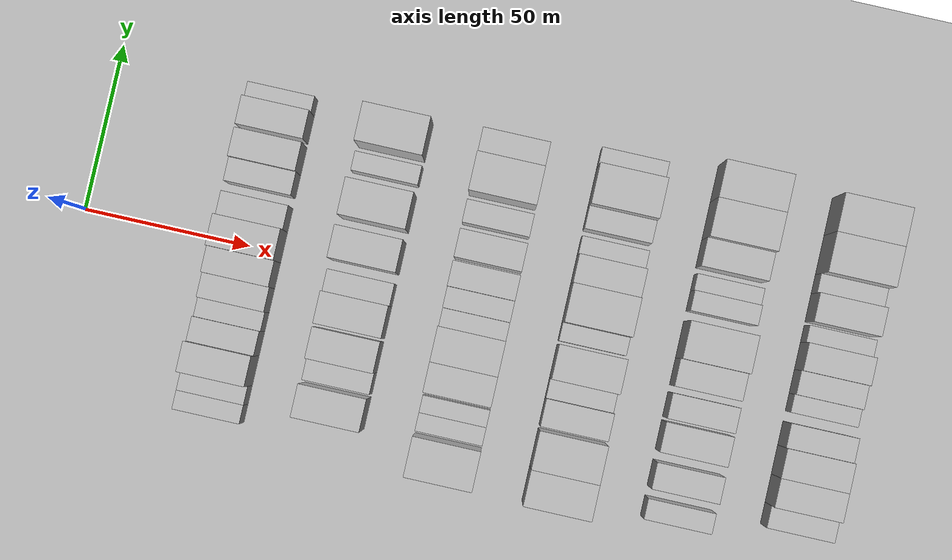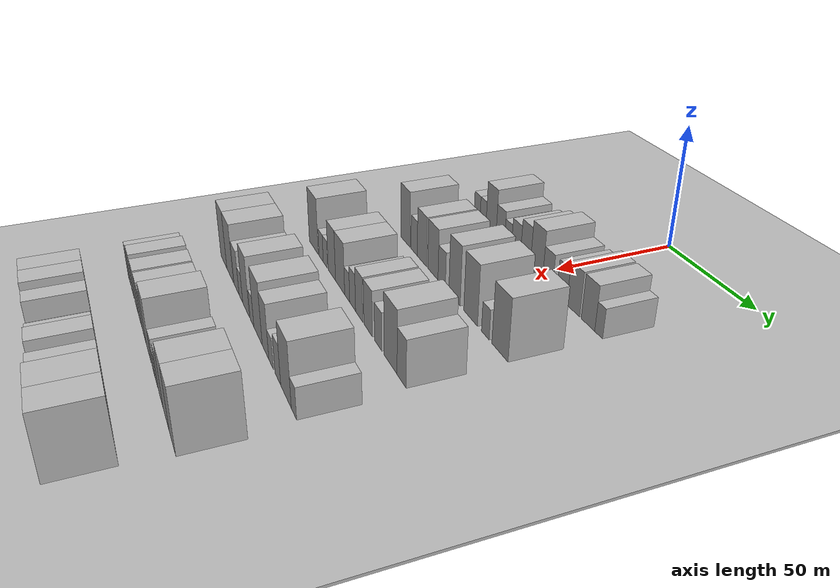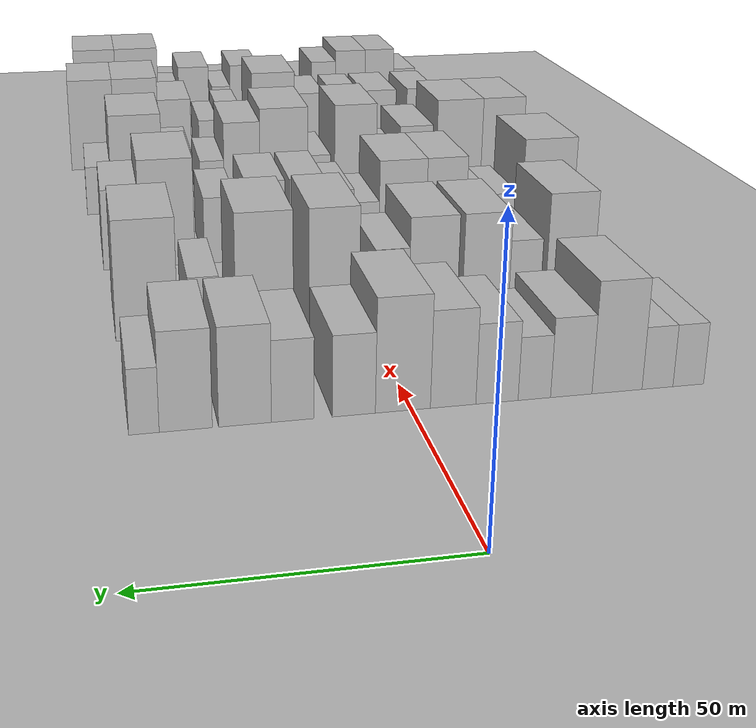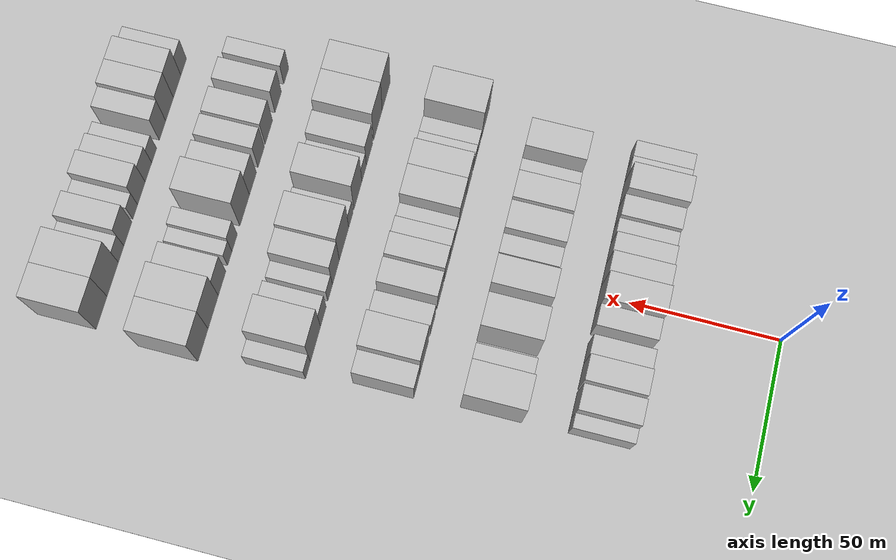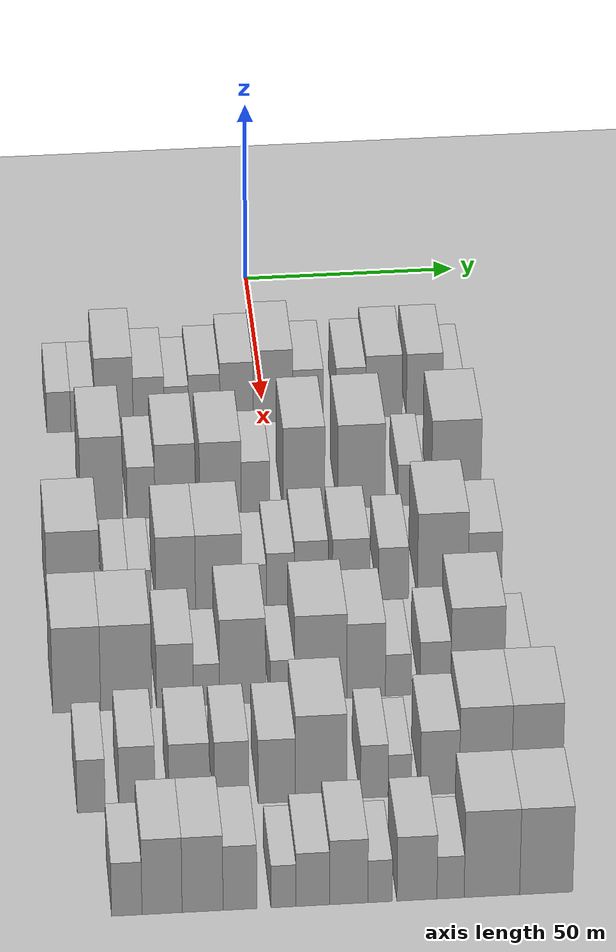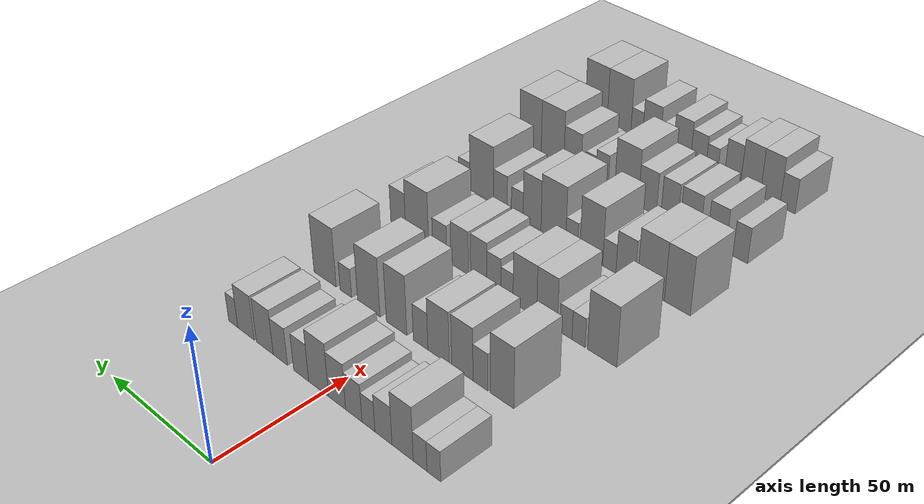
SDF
<sdf version="1.6">
 <world name="default">
  <include><name>ground_plane_1</name><uri>model://HANNAS_ground_plane</uri></include>
  <include>
   <name>ground_plane_2</name>
   <uri>model://HANNAS_ground_plane</uri>
   <pose>100 0 0  0 0 0</pose>
  </include>
  <model name="building_54">
   <static>1</static>
   <pose>50.0000 -48.3258 0 0.000000 0.000000 0.000000</pose>
   <link name="link">
    <pose>0 0 6.00 0 0 0</pose>
    <collision name="collision"><geometry><box><size>20.0000 5.6026 12.0000</size></box></geometry></collision>
    <visual name="visual">
     <cast_shadows>0</cast_shadows>
     <geometry><box><size>20.0000 5.6026 12.0000</size></box></geometry>
     <material>
      <script>
       <uri>model://HANNAS_wall/materials/scripts</uri>
       <uri>model://HANNAS_wall/materials/textures</uri>
       <name>vrc/HANNAS_wall</name>
      </script>
     </material>
    </visual>
   </link>
  </model>
  <model name="building_55">
   <static>1</static>
   <pose>50.0000 -42.7246 0 0.000000 0.000000 0.000000</pose>
   <link name="link">
    <pose>0 0 6.00 0 0 0</pose>
    <collision name="collision"><geometry><box><size>20.0000 5.5998 12.0000</size></box></geometry></collision>
    <visual name="visual">
     <cast_shadows>0</cast_shadows>
     <geometry><box><size>20.0000 5.5998 12.0000</size></box></geometry>
     <material>
      <script>
       <uri>model://HANNAS_wall/materials/scripts</uri>
       <uri>model://HANNAS_wall/materials/textures</uri>
       <name>vrc/HANNAS_wall</name>
      </script>
     </material>
    </visual>
   </link>
  </model>
  <model name="building_56">
   <static>1</static>
   <pose>50.0000 -35.4338 0 0.000000 0.000000 0.000000</pose>
   <link name="link">
    <pose>0 0 10.50 0 0 0</pose>
    <collision name="collision"><geometry><box><size>20.0000 8.9818 21.0000</size></box></geometry></collision>
    <visual name="visual">
     <cast_shadows>0</cast_shadows>
     <geometry><box><size>20.0000 8.9818 21.0000</size></box></geometry>
     <material>
      <script>
       <uri>model://HANNAS_wall/materials/scripts</uri>
       <uri>model://HANNAS_wall/materials/textures</uri>
       <name>vrc/HANNAS_wall</name>
      </script>
     </material>
    </visual>
   </link>
  </model>
  <model name="building_57">
   <static>1</static>
   <pose>50.0000 -27.2851 0 0.000000 0.000000 0.000000</pose>
   <link name="link">
    <pose>0 0 7.50 0 0 0</pose>
    <collision name="collision"><geometry><box><size>20.0000 7.3157 15.0000</size></box></geometry></collision>
    <visual name="visual">
     <cast_shadows>0</cast_shadows>
     <geometry><box><size>20.0000 7.3157 15.0000</size></box></geometry>
     <material>
      <script>
       <uri>model://HANNAS_wall/materials/scripts</uri>
       <uri>model://HANNAS_wall/materials/textures</uri>
       <name>vrc/HANNAS_wall</name>
      </script>
     </material>
    </visual>
   </link>
  </model>
  <model name="building_58">
   <static>1</static>
   <pose>50.0000 -20.7838 0 0.000000 0.000000 0.000000</pose>
   <link name="link">
    <pose>0 0 6.00 0 0 0</pose>
    <collision name="collision"><geometry><box><size>20.0000 5.6870 12.0000</size></box></geometry></collision>
    <visual name="visual">
     <cast_shadows>0</cast_shadows>
     <geometry><box><size>20.0000 5.6870 12.0000</size></box></geometry>
     <material>
      <script>
       <uri>model://HANNAS_wall/materials/scripts</uri>
       <uri>model://HANNAS_wall/materials/textures</uri>
       <name>vrc/HANNAS_wall</name>
      </script>
     </material>
    </visual>
   </link>
  </model>
  <model name="building_59">
   <static>1</static>
   <pose>50.0000 -14.2784 0 0.000000 0.000000 0.000000</pose>
   <link name="link">
    <pose>0 0 7.50 0 0 0</pose>
    <collision name="collision"><geometry><box><size>20.0000 7.3239 15.0000</size></box></geometry></collision>
    <visual name="visual">
     <cast_shadows>0</cast_shadows>
     <geometry><box><size>20.0000 7.3239 15.0000</size></box></geometry>
     <material>
      <script>
       <uri>model://HANNAS_wall/materials/scripts</uri>
       <uri>model://HANNAS_wall/materials/textures</uri>
       <name>vrc/HANNAS_wall</name>
      </script>
     </material>
    </visual>
   </link>
  </model>
  <model name="building_60">
   <static>1</static>
   <pose>50.0000 -6.7262 0 0.000000 0.000000 0.000000</pose>
   <link name="link">
    <pose>0 0 9.00 0 0 0</pose>
    <collision name="collision"><geometry><box><size>20.0000 7.7805 18.0000</size></box></geometry></collision>
    <visual name="visual">
     <cast_shadows>0</cast_shadows>
     <geometry><box><size>20.0000 7.7805 18.0000</size></box></geometry>
     <material>
      <script>
       <uri>model://HANNAS_wall/materials/scripts</uri>
       <uri>model://HANNAS_wall/materials/textures</uri>
       <name>vrc/HANNAS_wall</name>
      </script>
     </material>
    </visual>
   </link>
  </model>
  <model name="building_61">
   <static>1</static>
   <pose>50.0000 1.8113 0 0.000000 0.000000 0.000000</pose>
   <link name="link">
    <pose>0 0 10.50 0 0 0</pose>
    <collision name="collision"><geometry><box><size>20.0000 9.2945 21.0000</size></box></geometry></collision>
    <visual name="visual">
     <cast_shadows>0</cast_shadows>
     <geometry><box><size>20.0000 9.2945 21.0000</size></box></geometry>
     <material>
      <script>
       <uri>model://HANNAS_wall/materials/scripts</uri>
       <uri>model://HANNAS_wall/materials/textures</uri>
       <name>vrc/HANNAS_wall</name>
      </script>
     </material>
    </visual>
   </link>
  </model>
  <model name="building_62">
   <static>1</static>
   <pose>50.0000 10.0575 0 0.000000 0.000000 0.000000</pose>
   <link name="link">
    <pose>0 0 7.50 0 0 0</pose>
    <collision name="collision"><geometry><box><size>20.0000 7.1979 15.0000</size></box></geometry></collision>
    <visual name="visual">
     <cast_shadows>0</cast_shadows>
     <geometry><box><size>20.0000 7.1979 15.0000</size></box></geometry>
     <material>
      <script>
       <uri>model://HANNAS_wall/materials/scripts</uri>
       <uri>model://HANNAS_wall/materials/textures</uri>
       <name>vrc/HANNAS_wall</name>
      </script>
     </material>
    </visual>
   </link>
  </model>
  <model name="building_63">
   <static>1</static>
   <pose>50.0000 20.1612 0 0.000000 0.000000 0.000000</pose>
   <link name="link">
    <pose>0 0 7.50 0 0 0</pose>
    <collision name="collision"><geometry><box><size>20.0000 7.0094 15.0000</size></box></geometry></collision>
    <visual name="visual">
     <cast_shadows>0</cast_shadows>
     <geometry><box><size>20.0000 7.0094 15.0000</size></box></geometry>
     <material>
      <script>
       <uri>model://HANNAS_wall/materials/scripts</uri>
       <uri>model://HANNAS_wall/materials/textures</uri>
       <name>vrc/HANNAS_wall</name>
      </script>
     </material>
    </visual>
   </link>
  </model>
  <model name="building_64">
   <static>1</static>
   <pose>50.0000 27.9364 0 0.000000 0.000000 0.000000</pose>
   <link name="link">
    <pose>0 0 9.00 0 0 0</pose>
    <collision name="collision"><geometry><box><size>20.0000 8.5410 18.0000</size></box></geometry></collision>
    <visual name="visual">
     <cast_shadows>0</cast_shadows>
     <geometry><box><size>20.0000 8.5410 18.0000</size></box></geometry>
     <material>
      <script>
       <uri>model://HANNAS_wall/materials/scripts</uri>
       <uri>model://HANNAS_wall/materials/textures</uri>
       <name>vrc/HANNAS_wall</name>
      </script>
     </material>
    </visual>
   </link>
  </model>
  <model name="building_65">
   <static>1</static>
   <pose>50.0000 37.4472 0 0.000000 0.000000 0.000000</pose>
   <link name="link">
    <pose>0 0 9.00 0 0 0</pose>
    <collision name="collision"><geometry><box><size>20.0000 8.4807 18.0000</size></box></geometry></collision>
    <visual name="visual">
     <cast_shadows>0</cast_shadows>
     <geometry><box><size>20.0000 8.4807 18.0000</size></box></geometry>
     <material>
      <script>
       <uri>model://HANNAS_wall/materials/scripts</uri>
       <uri>model://HANNAS_wall/materials/textures</uri>
       <name>vrc/HANNAS_wall</name>
      </script>
     </material>
    </visual>
   </link>
  </model>
  <model name="building_66">
   <static>1</static>
   <pose>50.0000 44.1012 0 0.000000 0.000000 0.000000</pose>
   <link name="link">
    <pose>0 0 6.00 0 0 0</pose>
    <collision name="collision"><geometry><box><size>20.0000 4.8273 12.0000</size></box></geometry></collision>
    <visual name="visual">
     <cast_shadows>0</cast_shadows>
     <geometry><box><size>20.0000 4.8273 12.0000</size></box></geometry>
     <material>
      <script>
       <uri>model://HANNAS_wall/materials/scripts</uri>
       <uri>model://HANNAS_wall/materials/textures</uri>
       <name>vrc/HANNAS_wall</name>
      </script>
     </material>
    </visual>
   </link>
  </model>
  <model name="building_189">
   <static>1</static>
   <pose>85.0000 -40.3167 0 0.000000 0.000000 0.000000</pose>
   <link name="link">
    <pose>0 0 12.00 0 0 0</pose>
    <collision name="collision"><geometry><box><size>20.0000 9.7287 24.0000</size></box></geometry></collision>
    <visual name="visual">
     <cast_shadows>0</cast_shadows>
     <geometry><box><size>20.0000 9.7287 24.0000</size></box></geometry>
     <material>
      <script>
       <uri>model://HANNAS_wall/materials/scripts</uri>
       <uri>model://HANNAS_wall/materials/textures</uri>
       <name>vrc/HANNAS_wall</name>
      </script>
     </material>
    </visual>
   </link>
  </model>
  <model name="building_190">
   <static>1</static>
   <pose>85.0000 -31.2746 0 0.000000 0.000000 0.000000</pose>
   <link name="link">
    <pose>0 0 7.50 0 0 0</pose>
    <collision name="collision"><geometry><box><size>20.0000 6.3557 15.0000</size></box></geometry></collision>
    <visual name="visual">
     <cast_shadows>0</cast_shadows>
     <geometry><box><size>20.0000 6.3557 15.0000</size></box></geometry>
     <material>
      <script>
       <uri>model://HANNAS_wall/materials/scripts</uri>
       <uri>model://HANNAS_wall/materials/textures</uri>
       <name>vrc/HANNAS_wall</name>
      </script>
     </material>
    </visual>
   </link>
  </model>
  <model name="building_191">
   <static>1</static>
   <pose>85.0000 -23.4525 0 0.000000 0.000000 0.000000</pose>
   <link name="link">
    <pose>0 0 10.50 0 0 0</pose>
    <collision name="collision"><geometry><box><size>20.0000 9.2884 21.0000</size></box></geometry></collision>
    <visual name="visual">
     <cast_shadows>0</cast_shadows>
     <geometry><box><size>20.0000 9.2884 21.0000</size></box></geometry>
     <material>
      <script>
       <uri>model://HANNAS_wall/materials/scripts</uri>
       <uri>model://HANNAS_wall/materials/textures</uri>
       <name>vrc/HANNAS_wall</name>
      </script>
     </material>
    </visual>
   </link>
  </model>
  <model name="building_192">
   <static>1</static>
   <pose>85.0000 -13.0356 0 0.000000 0.000000 0.000000</pose>
   <link name="link">
    <pose>0 0 10.50 0 0 0</pose>
    <collision name="collision"><geometry><box><size>20.0000 9.5454 21.0000</size></box></geometry></collision>
    <visual name="visual">
     <cast_shadows>0</cast_shadows>
     <geometry><box><size>20.0000 9.5454 21.0000</size></box></geometry>
     <material>
      <script>
       <uri>model://HANNAS_wall/materials/scripts</uri>
       <uri>model://HANNAS_wall/materials/textures</uri>
       <name>vrc/HANNAS_wall</name>
      </script>
     </material>
    </visual>
   </link>
  </model>
  <model name="building_193">
   <static>1</static>
   <pose>85.0000 -4.9481 0 0.000000 0.000000 0.000000</pose>
   <link name="link">
    <pose>0 0 7.50 0 0 0</pose>
    <collision name="collision"><geometry><box><size>20.0000 6.6296 15.0000</size></box></geometry></collision>
    <visual name="visual">
     <cast_shadows>0</cast_shadows>
     <geometry><box><size>20.0000 6.6296 15.0000</size></box></geometry>
     <material>
      <script>
       <uri>model://HANNAS_wall/materials/scripts</uri>
       <uri>model://HANNAS_wall/materials/textures</uri>
       <name>vrc/HANNAS_wall</name>
      </script>
     </material>
    </visual>
   </link>
  </model>
  <model name="building_194">
   <static>1</static>
   <pose>85.0000 6.1848 0 0.000000 0.000000 0.000000</pose>
   <link name="link">
    <pose>0 0 12.00 0 0 0</pose>
    <collision name="collision"><geometry><box><size>20.0000 9.6360 24.0000</size></box></geometry></collision>
    <visual name="visual">
     <cast_shadows>0</cast_shadows>
     <geometry><box><size>20.0000 9.6360 24.0000</size></box></geometry>
     <material>
      <script>
       <uri>model://HANNAS_wall/materials/scripts</uri>
       <uri>model://HANNAS_wall/materials/textures</uri>
       <name>vrc/HANNAS_wall</name>
      </script>
     </material>
    </visual>
   </link>
  </model>
  <model name="building_195">
   <static>1</static>
   <pose>85.0000 19.4495 0 0.000000 0.000000 0.000000</pose>
   <link name="link">
    <pose>0 0 12.00 0 0 0</pose>
    <collision name="collision"><geometry><box><size>20.0000 10.8935 24.0000</size></box></geometry></collision>
    <visual name="visual">
     <cast_shadows>0</cast_shadows>
     <geometry><box><size>20.0000 10.8935 24.0000</size></box></geometry>
     <material>
      <script>
       <uri>model://HANNAS_wall/materials/scripts</uri>
       <uri>model://HANNAS_wall/materials/textures</uri>
       <name>vrc/HANNAS_wall</name>
      </script>
     </material>
    </visual>
   </link>
  </model>
  <model name="building_196">
   <static>1</static>
   <pose>85.0000 30.7673 0 0.000000 0.000000 0.000000</pose>
   <link name="link">
    <pose>0 0 6.00 0 0 0</pose>
    <collision name="collision"><geometry><box><size>20.0000 5.7422 12.0000</size></box></geometry></collision>
    <visual name="visual">
     <cast_shadows>0</cast_shadows>
     <geometry><box><size>20.0000 5.7422 12.0000</size></box></geometry>
     <material>
      <script>
       <uri>model://HANNAS_wall/materials/scripts</uri>
       <uri>model://HANNAS_wall/materials/textures</uri>
       <name>vrc/HANNAS_wall</name>
      </script>
     </material>
    </visual>
   </link>
  </model>
  <model name="building_197">
   <static>1</static>
   <pose>85.0000 41.3418 0 0.000000 0.000000 0.000000</pose>
   <link name="link">
    <pose>0 0 12.00 0 0 0</pose>
    <collision name="collision"><geometry><box><size>20.0000 11.4066 24.0000</size></box></geometry></collision>
    <visual name="visual">
     <cast_shadows>0</cast_shadows>
     <geometry><box><size>20.0000 11.4066 24.0000</size></box></geometry>
     <material>
      <script>
       <uri>model://HANNAS_wall/materials/scripts</uri>
       <uri>model://HANNAS_wall/materials/textures</uri>
       <name>vrc/HANNAS_wall</name>
      </script>
     </material>
    </visual>
   </link>
  </model>
  <model name="building_315">
   <static>1</static>
   <pose>120.0000 -48.7203 0 0.000000 0.000000 0.000000</pose>
   <link name="link">
    <pose>0 0 12.00 0 0 0</pose>
    <collision name="collision"><geometry><box><size>20.0000 11.8849 24.0000</size></box></geometry></collision>
    <visual name="visual">
     <cast_shadows>0</cast_shadows>
     <geometry><box><size>20.0000 11.8849 24.0000</size></box></geometry>
     <material>
      <script>
       <uri>model://HANNAS_wall/materials/scripts</uri>
       <uri>model://HANNAS_wall/materials/textures</uri>
       <name>vrc/HANNAS_wall</name>
      </script>
     </material>
    </visual>
   </link>
  </model>
  <model name="building_316">
   <static>1</static>
   <pose>120.0000 -39.0490 0 0.000000 0.000000 0.000000</pose>
   <link name="link">
    <pose>0 0 6.00 0 0 0</pose>
    <collision name="collision"><geometry><box><size>20.0000 5.4577 12.0000</size></box></geometry></collision>
    <visual name="visual">
     <cast_shadows>0</cast_shadows>
     <geometry><box><size>20.0000 5.4577 12.0000</size></box></geometry>
     <material>
      <script>
       <uri>model://HANNAS_wall/materials/scripts</uri>
       <uri>model://HANNAS_wall/materials/textures</uri>
       <name>vrc/HANNAS_wall</name>
      </script>
     </material>
    </visual>
   </link>
  </model>
  <model name="building_317">
   <static>1</static>
   <pose>120.0000 -33.7328 0 0.000000 0.000000 0.000000</pose>
   <link name="link">
    <pose>0 0 6.00 0 0 0</pose>
    <collision name="collision"><geometry><box><size>20.0000 5.1747 12.0000</size></box></geometry></collision>
    <visual name="visual">
     <cast_shadows>0</cast_shadows>
     <geometry><box><size>20.0000 5.1747 12.0000</size></box></geometry>
     <material>
      <script>
       <uri>model://HANNAS_wall/materials/scripts</uri>
       <uri>model://HANNAS_wall/materials/textures</uri>
       <name>vrc/HANNAS_wall</name>
      </script>
     </material>
    </visual>
   </link>
  </model>
  <model name="building_318">
   <static>1</static>
   <pose>120.0000 -25.6746 0 0.000000 0.000000 0.000000</pose>
   <link name="link">
    <pose>0 0 10.50 0 0 0</pose>
    <collision name="collision"><geometry><box><size>20.0000 8.9417 21.0000</size></box></geometry></collision>
    <visual name="visual">
     <cast_shadows>0</cast_shadows>
     <geometry><box><size>20.0000 8.9417 21.0000</size></box></geometry>
     <material>
      <script>
       <uri>model://HANNAS_wall/materials/scripts</uri>
       <uri>model://HANNAS_wall/materials/textures</uri>
       <name>vrc/HANNAS_wall</name>
      </script>
     </material>
    </visual>
   </link>
  </model>
  <model name="building_319">
   <static>1</static>
   <pose>120.0000 -15.9618 0 0.000000 0.000000 0.000000</pose>
   <link name="link">
    <pose>0 0 10.50 0 0 0</pose>
    <collision name="collision"><geometry><box><size>20.0000 10.4840 21.0000</size></box></geometry></collision>
    <visual name="visual">
     <cast_shadows>0</cast_shadows>
     <geometry><box><size>20.0000 10.4840 21.0000</size></box></geometry>
     <material>
      <script>
       <uri>model://HANNAS_wall/materials/scripts</uri>
       <uri>model://HANNAS_wall/materials/textures</uri>
       <name>vrc/HANNAS_wall</name>
      </script>
     </material>
    </visual>
   </link>
  </model>
  <model name="building_320">
   <static>1</static>
   <pose>120.0000 -7.9566 0 0.000000 0.000000 0.000000</pose>
   <link name="link">
    <pose>0 0 6.00 0 0 0</pose>
    <collision name="collision"><geometry><box><size>20.0000 5.5264 12.0000</size></box></geometry></collision>
    <visual name="visual">
     <cast_shadows>0</cast_shadows>
     <geometry><box><size>20.0000 5.5264 12.0000</size></box></geometry>
     <material>
      <script>
       <uri>model://HANNAS_wall/materials/scripts</uri>
       <uri>model://HANNAS_wall/materials/textures</uri>
       <name>vrc/HANNAS_wall</name>
      </script>
     </material>
    </visual>
   </link>
  </model>
  <model name="building_321">
   <static>1</static>
   <pose>120.0000 -2.0311 0 0.000000 0.000000 0.000000</pose>
   <link name="link">
    <pose>0 0 7.50 0 0 0</pose>
    <collision name="collision"><geometry><box><size>20.0000 6.3246 15.0000</size></box></geometry></collision>
    <visual name="visual">
     <cast_shadows>0</cast_shadows>
     <geometry><box><size>20.0000 6.3246 15.0000</size></box></geometry>
     <material>
      <script>
       <uri>model://HANNAS_wall/materials/scripts</uri>
       <uri>model://HANNAS_wall/materials/textures</uri>
       <name>vrc/HANNAS_wall</name>
      </script>
     </material>
    </visual>
   </link>
  </model>
  <model name="building_322">
   <static>1</static>
   <pose>120.0000 4.9315 0 0.000000 0.000000 0.000000</pose>
   <link name="link">
    <pose>0 0 9.00 0 0 0</pose>
    <collision name="collision"><geometry><box><size>20.0000 7.6006 18.0000</size></box></geometry></collision>
    <visual name="visual">
     <cast_shadows>0</cast_shadows>
     <geometry><box><size>20.0000 7.6006 18.0000</size></box></geometry>
     <material>
      <script>
       <uri>model://HANNAS_wall/materials/scripts</uri>
       <uri>model://HANNAS_wall/materials/textures</uri>
       <name>vrc/HANNAS_wall</name>
      </script>
     </material>
    </visual>
   </link>
  </model>
  <model name="building_323">
   <static>1</static>
   <pose>120.0000 13.9348 0 0.000000 0.000000 0.000000</pose>
   <link name="link">
    <pose>0 0 9.00 0 0 0</pose>
    <collision name="collision"><geometry><box><size>20.0000 8.4059 18.0000</size></box></geometry></collision>
    <visual name="visual">
     <cast_shadows>0</cast_shadows>
     <geometry><box><size>20.0000 8.4059 18.0000</size></box></geometry>
     <material>
      <script>
       <uri>model://HANNAS_wall/materials/scripts</uri>
       <uri>model://HANNAS_wall/materials/textures</uri>
       <name>vrc/HANNAS_wall</name>
      </script>
     </material>
    </visual>
   </link>
  </model>
  <model name="building_324">
   <static>1</static>
   <pose>120.0000 23.5637 0 0.000000 0.000000 0.000000</pose>
   <link name="link">
    <pose>0 0 7.50 0 0 0</pose>
    <collision name="collision"><geometry><box><size>20.0000 6.8520 15.0000</size></box></geometry></collision>
    <visual name="visual">
     <cast_shadows>0</cast_shadows>
     <geometry><box><size>20.0000 6.8520 15.0000</size></box></geometry>
     <material>
      <script>
       <uri>model://HANNAS_wall/materials/scripts</uri>
       <uri>model://HANNAS_wall/materials/textures</uri>
       <name>vrc/HANNAS_wall</name>
      </script>
     </material>
    </visual>
   </link>
  </model>
  <model name="building_325">
   <static>1</static>
   <pose>120.0000 34.7337 0 0.000000 0.000000 0.000000</pose>
   <link name="link">
    <pose>0 0 12.00 0 0 0</pose>
    <collision name="collision"><geometry><box><size>20.0000 11.4880 24.0000</size></box></geometry></collision>
    <visual name="visual">
     <cast_shadows>0</cast_shadows>
     <geometry><box><size>20.0000 11.4880 24.0000</size></box></geometry>
     <material>
      <script>
       <uri>model://HANNAS_wall/materials/scripts</uri>
       <uri>model://HANNAS_wall/materials/textures</uri>
       <name>vrc/HANNAS_wall</name>
      </script>
     </material>
    </visual>
   </link>
  </model>
  <model name="building_326">
   <static>1</static>
   <pose>120.0000 44.2799 0 0.000000 0.000000 0.000000</pose>
   <link name="link">
    <pose>0 0 9.00 0 0 0</pose>
    <collision name="collision"><geometry><box><size>20.0000 7.6044 18.0000</size></box></geometry></collision>
    <visual name="visual">
     <cast_shadows>0</cast_shadows>
     <geometry><box><size>20.0000 7.6044 18.0000</size></box></geometry>
     <material>
      <script>
       <uri>model://HANNAS_wall/materials/scripts</uri>
       <uri>model://HANNAS_wall/materials/textures</uri>
       <name>vrc/HANNAS_wall</name>
      </script>
     </material>
    </visual>
   </link>
  </model>
  <model name="building_440">
   <static>1</static>
   <pose>155.0000 -49.9198 0 0.000000 0.000000 0.000000</pose>
   <link name="link">
    <pose>0 0 12.00 0 0 0</pose>
    <collision name="collision"><geometry><box><size>20.0000 10.5899 24.0000</size></box></geometry></collision>
    <visual name="visual">
     <cast_shadows>0</cast_shadows>
     <geometry><box><size>20.0000 10.5899 24.0000</size></box></geometry>
     <material>
      <script>
       <uri>model://HANNAS_wall/materials/scripts</uri>
       <uri>model://HANNAS_wall/materials/textures</uri>
       <name>vrc/HANNAS_wall</name>
      </script>
     </material>
    </visual>
   </link>
  </model>
  <model name="building_441">
   <static>1</static>
   <pose>155.0000 -38.9523 0 0.000000 0.000000 0.000000</pose>
   <link name="link">
    <pose>0 0 12.00 0 0 0</pose>
    <collision name="collision"><geometry><box><size>20.0000 11.3451 24.0000</size></box></geometry></collision>
    <visual name="visual">
     <cast_shadows>0</cast_shadows>
     <geometry><box><size>20.0000 11.3451 24.0000</size></box></geometry>
     <material>
      <script>
       <uri>model://HANNAS_wall/materials/scripts</uri>
       <uri>model://HANNAS_wall/materials/textures</uri>
       <name>vrc/HANNAS_wall</name>
      </script>
     </material>
    </visual>
   </link>
  </model>
  <model name="building_442">
   <static>1</static>
   <pose>155.0000 -28.1879 0 0.000000 0.000000 0.000000</pose>
   <link name="link">
    <pose>0 0 9.00 0 0 0</pose>
    <collision name="collision"><geometry><box><size>20.0000 8.1836 18.0000</size></box></geometry></collision>
    <visual name="visual">
     <cast_shadows>0</cast_shadows>
     <geometry><box><size>20.0000 8.1836 18.0000</size></box></geometry>
     <material>
      <script>
       <uri>model://HANNAS_wall/materials/scripts</uri>
       <uri>model://HANNAS_wall/materials/textures</uri>
       <name>vrc/HANNAS_wall</name>
      </script>
     </material>
    </visual>
   </link>
  </model>
  <model name="building_443">
   <static>1</static>
   <pose>155.0000 -21.2065 0 0.000000 0.000000 0.000000</pose>
   <link name="link">
    <pose>0 0 6.00 0 0 0</pose>
    <collision name="collision"><geometry><box><size>20.0000 5.7793 12.0000</size></box></geometry></collision>
    <visual name="visual">
     <cast_shadows>0</cast_shadows>
     <geometry><box><size>20.0000 5.7793 12.0000</size></box></geometry>
     <material>
      <script>
       <uri>model://HANNAS_wall/materials/scripts</uri>
       <uri>model://HANNAS_wall/materials/textures</uri>
       <name>vrc/HANNAS_wall</name>
      </script>
     </material>
    </visual>
   </link>
  </model>
  <model name="building_444">
   <static>1</static>
   <pose>155.0000 -13.2090 0 0.000000 0.000000 0.000000</pose>
   <link name="link">
    <pose>0 0 12.00 0 0 0</pose>
    <collision name="collision"><geometry><box><size>20.0000 10.2158 24.0000</size></box></geometry></collision>
    <visual name="visual">
     <cast_shadows>0</cast_shadows>
     <geometry><box><size>20.0000 10.2158 24.0000</size></box></geometry>
     <material>
      <script>
       <uri>model://HANNAS_wall/materials/scripts</uri>
       <uri>model://HANNAS_wall/materials/textures</uri>
       <name>vrc/HANNAS_wall</name>
      </script>
     </material>
    </visual>
   </link>
  </model>
  <model name="building_445">
   <static>1</static>
   <pose>155.0000 -4.3691 0 0.000000 0.000000 0.000000</pose>
   <link name="link">
    <pose>0 0 6.00 0 0 0</pose>
    <collision name="collision"><geometry><box><size>20.0000 5.4639 12.0000</size></box></geometry></collision>
    <visual name="visual">
     <cast_shadows>0</cast_shadows>
     <geometry><box><size>20.0000 5.4639 12.0000</size></box></geometry>
     <material>
      <script>
       <uri>model://HANNAS_wall/materials/scripts</uri>
       <uri>model://HANNAS_wall/materials/textures</uri>
       <name>vrc/HANNAS_wall</name>
      </script>
     </material>
    </visual>
   </link>
  </model>
  <model name="building_446">
   <static>1</static>
   <pose>155.0000 4.1331 0 0.000000 0.000000 0.000000</pose>
   <link name="link">
    <pose>0 0 12.00 0 0 0</pose>
    <collision name="collision"><geometry><box><size>20.0000 11.5405 24.0000</size></box></geometry></collision>
    <visual name="visual">
     <cast_shadows>0</cast_shadows>
     <geometry><box><size>20.0000 11.5405 24.0000</size></box></geometry>
     <material>
      <script>
       <uri>model://HANNAS_wall/materials/scripts</uri>
       <uri>model://HANNAS_wall/materials/textures</uri>
       <name>vrc/HANNAS_wall</name>
      </script>
     </material>
    </visual>
   </link>
  </model>
  <model name="building_447">
   <static>1</static>
   <pose>155.0000 14.1866 0 0.000000 0.000000 0.000000</pose>
   <link name="link">
    <pose>0 0 10.50 0 0 0</pose>
    <collision name="collision"><geometry><box><size>20.0000 8.5666 21.0000</size></box></geometry></collision>
    <visual name="visual">
     <cast_shadows>0</cast_shadows>
     <geometry><box><size>20.0000 8.5666 21.0000</size></box></geometry>
     <material>
      <script>
       <uri>model://HANNAS_wall/materials/scripts</uri>
       <uri>model://HANNAS_wall/materials/textures</uri>
       <name>vrc/HANNAS_wall</name>
      </script>
     </material>
    </visual>
   </link>
  </model>
  <model name="building_448">
   <static>1</static>
   <pose>155.0000 21.3160 0 0.000000 0.000000 0.000000</pose>
   <link name="link">
    <pose>0 0 6.00 0 0 0</pose>
    <collision name="collision"><geometry><box><size>20.0000 5.6921 12.0000</size></box></geometry></collision>
    <visual name="visual">
     <cast_shadows>0</cast_shadows>
     <geometry><box><size>20.0000 5.6921 12.0000</size></box></geometry>
     <material>
      <script>
       <uri>model://HANNAS_wall/materials/scripts</uri>
       <uri>model://HANNAS_wall/materials/textures</uri>
       <name>vrc/HANNAS_wall</name>
      </script>
     </material>
    </visual>
   </link>
  </model>
  <model name="building_449">
   <static>1</static>
   <pose>155.0000 29.5695 0 0.000000 0.000000 0.000000</pose>
   <link name="link">
    <pose>0 0 7.50 0 0 0</pose>
    <collision name="collision"><geometry><box><size>20.0000 6.8151 15.0000</size></box></geometry></collision>
    <visual name="visual">
     <cast_shadows>0</cast_shadows>
     <geometry><box><size>20.0000 6.8151 15.0000</size></box></geometry>
     <material>
      <script>
       <uri>model://HANNAS_wall/materials/scripts</uri>
       <uri>model://HANNAS_wall/materials/textures</uri>
       <name>vrc/HANNAS_wall</name>
      </script>
     </material>
    </visual>
   </link>
  </model>
  <model name="building_450">
   <static>1</static>
   <pose>155.0000 38.9647 0 0.000000 0.000000 0.000000</pose>
   <link name="link">
    <pose>0 0 12.00 0 0 0</pose>
    <collision name="collision"><geometry><box><size>20.0000 11.9753 24.0000</size></box></geometry></collision>
    <visual name="visual">
     <cast_shadows>0</cast_shadows>
     <geometry><box><size>20.0000 11.9753 24.0000</size></box></geometry>
     <material>
      <script>
       <uri>model://HANNAS_wall/materials/scripts</uri>
       <uri>model://HANNAS_wall/materials/textures</uri>
       <name>vrc/HANNAS_wall</name>
      </script>
     </material>
    </visual>
   </link>
  </model>
  <model name="building_451">
   <static>1</static>
   <pose>155.0000 47.8141 0 0.000000 0.000000 0.000000</pose>
   <link name="link">
    <pose>0 0 6.00 0 0 0</pose>
    <collision name="collision"><geometry><box><size>20.0000 5.7235 12.0000</size></box></geometry></collision>
    <visual name="visual">
     <cast_shadows>0</cast_shadows>
     <geometry><box><size>20.0000 5.7235 12.0000</size></box></geometry>
     <material>
      <script>
       <uri>model://HANNAS_wall/materials/scripts</uri>
       <uri>model://HANNAS_wall/materials/textures</uri>
       <name>vrc/HANNAS_wall</name>
      </script>
     </material>
    </visual>
   </link>
  </model>
  <model name="building_570">
   <static>1</static>
   <pose>190.0000 -48.7100 0 0.000000 0.000000 0.000000</pose>
   <link name="link">
    <pose>0 0 7.50 0 0 0</pose>
    <collision name="collision"><geometry><box><size>20.0000 6.0887 15.0000</size></box></geometry></collision>
    <visual name="visual">
     <cast_shadows>0</cast_shadows>
     <geometry><box><size>20.0000 6.0887 15.0000</size></box></geometry>
     <material>
      <script>
       <uri>model://HANNAS_wall/materials/scripts</uri>
       <uri>model://HANNAS_wall/materials/textures</uri>
       <name>vrc/HANNAS_wall</name>
      </script>
     </material>
    </visual>
   </link>
  </model>
  <model name="building_571">
   <static>1</static>
   <pose>190.0000 -38.7577 0 0.000000 0.000000 0.000000</pose>
   <link name="link">
    <pose>0 0 9.00 0 0 0</pose>
    <collision name="collision"><geometry><box><size>20.0000 7.8160 18.0000</size></box></geometry></collision>
    <visual name="visual">
     <cast_shadows>0</cast_shadows>
     <geometry><box><size>20.0000 7.8160 18.0000</size></box></geometry>
     <material>
      <script>
       <uri>model://HANNAS_wall/materials/scripts</uri>
       <uri>model://HANNAS_wall/materials/textures</uri>
       <name>vrc/HANNAS_wall</name>
      </script>
     </material>
    </visual>
   </link>
  </model>
  <model name="building_572">
   <static>1</static>
   <pose>190.0000 -27.4207 0 0.000000 0.000000 0.000000</pose>
   <link name="link">
    <pose>0 0 9.00 0 0 0</pose>
    <collision name="collision"><geometry><box><size>20.0000 8.8580 18.0000</size></box></geometry></collision>
    <visual name="visual">
     <cast_shadows>0</cast_shadows>
     <geometry><box><size>20.0000 8.8580 18.0000</size></box></geometry>
     <material>
      <script>
       <uri>model://HANNAS_wall/materials/scripts</uri>
       <uri>model://HANNAS_wall/materials/textures</uri>
       <name>vrc/HANNAS_wall</name>
      </script>
     </material>
    </visual>
   </link>
  </model>
  <model name="building_573">
   <static>1</static>
   <pose>190.0000 -18.2484 0 0.000000 0.000000 0.000000</pose>
   <link name="link">
    <pose>0 0 9.00 0 0 0</pose>
    <collision name="collision"><geometry><box><size>20.0000 7.4866 18.0000</size></box></geometry></collision>
    <visual name="visual">
     <cast_shadows>0</cast_shadows>
     <geometry><box><size>20.0000 7.4866 18.0000</size></box></geometry>
     <material>
      <script>
       <uri>model://HANNAS_wall/materials/scripts</uri>
       <uri>model://HANNAS_wall/materials/textures</uri>
       <name>vrc/HANNAS_wall</name>
      </script>
     </material>
    </visual>
   </link>
  </model>
  <model name="building_574">
   <static>1</static>
   <pose>190.0000 -8.4318 0 0.000000 0.000000 0.000000</pose>
   <link name="link">
    <pose>0 0 9.00 0 0 0</pose>
    <collision name="collision"><geometry><box><size>20.0000 8.1466 18.0000</size></box></geometry></collision>
    <visual name="visual">
     <cast_shadows>0</cast_shadows>
     <geometry><box><size>20.0000 8.1466 18.0000</size></box></geometry>
     <material>
      <script>
       <uri>model://HANNAS_wall/materials/scripts</uri>
       <uri>model://HANNAS_wall/materials/textures</uri>
       <name>vrc/HANNAS_wall</name>
      </script>
     </material>
    </visual>
   </link>
  </model>
  <model name="building_575">
   <static>1</static>
   <pose>190.0000 1.2036 0 0.000000 0.000000 0.000000</pose>
   <link name="link">
    <pose>0 0 12.00 0 0 0</pose>
    <collision name="collision"><geometry><box><size>20.0000 11.1243 24.0000</size></box></geometry></collision>
    <visual name="visual">
     <cast_shadows>0</cast_shadows>
     <geometry><box><size>20.0000 11.1243 24.0000</size></box></geometry>
     <material>
      <script>
       <uri>model://HANNAS_wall/materials/scripts</uri>
       <uri>model://HANNAS_wall/materials/textures</uri>
       <name>vrc/HANNAS_wall</name>
      </script>
     </material>
    </visual>
   </link>
  </model>
  <model name="building_576">
   <static>1</static>
   <pose>190.0000 12.7835 0 0.000000 0.000000 0.000000</pose>
   <link name="link">
    <pose>0 0 7.50 0 0 0</pose>
    <collision name="collision"><geometry><box><size>20.0000 6.0354 15.0000</size></box></geometry></collision>
    <visual name="visual">
     <cast_shadows>0</cast_shadows>
     <geometry><box><size>20.0000 6.0354 15.0000</size></box></geometry>
     <material>
      <script>
       <uri>model://HANNAS_wall/materials/scripts</uri>
       <uri>model://HANNAS_wall/materials/textures</uri>
       <name>vrc/HANNAS_wall</name>
      </script>
     </material>
    </visual>
   </link>
  </model>
  <model name="building_577">
   <static>1</static>
   <pose>190.0000 18.3315 0 0.000000 0.000000 0.000000</pose>
   <link name="link">
    <pose>0 0 6.00 0 0 0</pose>
    <collision name="collision"><geometry><box><size>20.0000 5.0604 12.0000</size></box></geometry></collision>
    <visual name="visual">
     <cast_shadows>0</cast_shadows>
     <geometry><box><size>20.0000 5.0604 12.0000</size></box></geometry>
     <material>
      <script>
       <uri>model://HANNAS_wall/materials/scripts</uri>
       <uri>model://HANNAS_wall/materials/textures</uri>
       <name>vrc/HANNAS_wall</name>
      </script>
     </material>
    </visual>
   </link>
  </model>
  <model name="building_578">
   <static>1</static>
   <pose>190.0000 27.1025 0 0.000000 0.000000 0.000000</pose>
   <link name="link">
    <pose>0 0 9.00 0 0 0</pose>
    <collision name="collision"><geometry><box><size>20.0000 8.4815 18.0000</size></box></geometry></collision>
    <visual name="visual">
     <cast_shadows>0</cast_shadows>
     <geometry><box><size>20.0000 8.4815 18.0000</size></box></geometry>
     <material>
      <script>
       <uri>model://HANNAS_wall/materials/scripts</uri>
       <uri>model://HANNAS_wall/materials/textures</uri>
       <name>vrc/HANNAS_wall</name>
      </script>
     </material>
    </visual>
   </link>
  </model>
  <model name="building_579">
   <static>1</static>
   <pose>190.0000 37.0513 0 0.000000 0.000000 0.000000</pose>
   <link name="link">
    <pose>0 0 12.00 0 0 0</pose>
    <collision name="collision"><geometry><box><size>20.0000 11.4161 24.0000</size></box></geometry></collision>
    <visual name="visual">
     <cast_shadows>0</cast_shadows>
     <geometry><box><size>20.0000 11.4161 24.0000</size></box></geometry>
     <material>
      <script>
       <uri>model://HANNAS_wall/materials/scripts</uri>
       <uri>model://HANNAS_wall/materials/textures</uri>
       <name>vrc/HANNAS_wall</name>
      </script>
     </material>
    </visual>
   </link>
  </model>
  <model name="building_580">
   <static>1</static>
   <pose>190.0000 48.3121 0 0.000000 0.000000 0.000000</pose>
   <link name="link">
    <pose>0 0 12.00 0 0 0</pose>
    <collision name="collision"><geometry><box><size>20.0000 11.1057 24.0000</size></box></geometry></collision>
    <visual name="visual">
     <cast_shadows>0</cast_shadows>
     <geometry><box><size>20.0000 11.1057 24.0000</size></box></geometry>
     <material>
      <script>
       <uri>model://HANNAS_wall/materials/scripts</uri>
       <uri>model://HANNAS_wall/materials/textures</uri>
       <name>vrc/HANNAS_wall</name>
      </script>
     </material>
    </visual>
   </link>
  </model>
  <model name="building_693">
   <static>1</static>
   <pose>225.0000 -43.1500 0 0.000000 0.000000 0.000000</pose>
   <link name="link">
    <pose>0 0 7.50 0 0 0</pose>
    <collision name="collision"><geometry><box><size>20.0000 6.4653 15.0000</size></box></geometry></collision>
    <visual name="visual">
     <cast_shadows>0</cast_shadows>
     <geometry><box><size>20.0000 6.4653 15.0000</size></box></geometry>
     <material>
      <script>
       <uri>model://HANNAS_wall/materials/scripts</uri>
       <uri>model://HANNAS_wall/materials/textures</uri>
       <name>vrc/HANNAS_wall</name>
      </script>
     </material>
    </visual>
   </link>
  </model>
  <model name="building_694">
   <static>1</static>
   <pose>225.0000 -35.6572 0 0.000000 0.000000 0.000000</pose>
   <link name="link">
    <pose>0 0 10.50 0 0 0</pose>
    <collision name="collision"><geometry><box><size>20.0000 8.5203 21.0000</size></box></geometry></collision>
    <visual name="visual">
     <cast_shadows>0</cast_shadows>
     <geometry><box><size>20.0000 8.5203 21.0000</size></box></geometry>
     <material>
      <script>
       <uri>model://HANNAS_wall/materials/scripts</uri>
       <uri>model://HANNAS_wall/materials/textures</uri>
       <name>vrc/HANNAS_wall</name>
      </script>
     </material>
    </visual>
   </link>
  </model>
  <model name="building_695">
   <static>1</static>
   <pose>225.0000 -27.0417 0 0.000000 0.000000 0.000000</pose>
   <link name="link">
    <pose>0 0 10.50 0 0 0</pose>
    <collision name="collision"><geometry><box><size>20.0000 8.7107 21.0000</size></box></geometry></collision>
    <visual name="visual">
     <cast_shadows>0</cast_shadows>
     <geometry><box><size>20.0000 8.7107 21.0000</size></box></geometry>
     <material>
      <script>
       <uri>model://HANNAS_wall/materials/scripts</uri>
       <uri>model://HANNAS_wall/materials/textures</uri>
       <name>vrc/HANNAS_wall</name>
      </script>
     </material>
    </visual>
   </link>
  </model>
  <model name="building_696">
   <static>1</static>
   <pose>225.0000 -19.0833 0 0.000000 0.000000 0.000000</pose>
   <link name="link">
    <pose>0 0 9.00 0 0 0</pose>
    <collision name="collision"><geometry><box><size>20.0000 7.2061 18.0000</size></box></geometry></collision>
    <visual name="visual">
     <cast_shadows>0</cast_shadows>
     <geometry><box><size>20.0000 7.2061 18.0000</size></box></geometry>
     <material>
      <script>
       <uri>model://HANNAS_wall/materials/scripts</uri>
       <uri>model://HANNAS_wall/materials/textures</uri>
       <name>vrc/HANNAS_wall</name>
      </script>
     </material>
    </visual>
   </link>
  </model>
  <model name="building_697">
   <static>1</static>
   <pose>225.0000 -9.7993 0 0.000000 0.000000 0.000000</pose>
   <link name="link">
    <pose>0 0 6.00 0 0 0</pose>
    <collision name="collision"><geometry><box><size>20.0000 5.3619 12.0000</size></box></geometry></collision>
    <visual name="visual">
     <cast_shadows>0</cast_shadows>
     <geometry><box><size>20.0000 5.3619 12.0000</size></box></geometry>
     <material>
      <script>
       <uri>model://HANNAS_wall/materials/scripts</uri>
       <uri>model://HANNAS_wall/materials/textures</uri>
       <name>vrc/HANNAS_wall</name>
      </script>
     </material>
    </visual>
   </link>
  </model>
  <model name="building_698">
   <static>1</static>
   <pose>225.0000 -3.5575 0 0.000000 0.000000 0.000000</pose>
   <link name="link">
    <pose>0 0 7.50 0 0 0</pose>
    <collision name="collision"><geometry><box><size>20.0000 7.1215 15.0000</size></box></geometry></collision>
    <visual name="visual">
     <cast_shadows>0</cast_shadows>
     <geometry><box><size>20.0000 7.1215 15.0000</size></box></geometry>
     <material>
      <script>
       <uri>model://HANNAS_wall/materials/scripts</uri>
       <uri>model://HANNAS_wall/materials/textures</uri>
       <name>vrc/HANNAS_wall</name>
      </script>
     </material>
    </visual>
   </link>
  </model>
  <model name="building_699">
   <static>1</static>
   <pose>225.0000 4.1081 0 0.000000 0.000000 0.000000</pose>
   <link name="link">
    <pose>0 0 9.00 0 0 0</pose>
    <collision name="collision"><geometry><box><size>20.0000 8.2097 18.0000</size></box></geometry></collision>
    <visual name="visual">
     <cast_shadows>0</cast_shadows>
     <geometry><box><size>20.0000 8.2097 18.0000</size></box></geometry>
     <material>
      <script>
       <uri>model://HANNAS_wall/materials/scripts</uri>
       <uri>model://HANNAS_wall/materials/textures</uri>
       <name>vrc/HANNAS_wall</name>
      </script>
     </material>
    </visual>
   </link>
  </model>
  <model name="building_700">
   <static>1</static>
   <pose>225.0000 10.8162 0 0.000000 0.000000 0.000000</pose>
   <link name="link">
    <pose>0 0 6.00 0 0 0</pose>
    <collision name="collision"><geometry><box><size>20.0000 5.2065 12.0000</size></box></geometry></collision>
    <visual name="visual">
     <cast_shadows>0</cast_shadows>
     <geometry><box><size>20.0000 5.2065 12.0000</size></box></geometry>
     <material>
      <script>
       <uri>model://HANNAS_wall/materials/scripts</uri>
       <uri>model://HANNAS_wall/materials/textures</uri>
       <name>vrc/HANNAS_wall</name>
      </script>
     </material>
    </visual>
   </link>
  </model>
  <model name="building_701">
   <static>1</static>
   <pose>225.0000 18.6970 0 0.000000 0.000000 0.000000</pose>
   <link name="link">
    <pose>0 0 9.00 0 0 0</pose>
    <collision name="collision"><geometry><box><size>20.0000 8.5552 18.0000</size></box></geometry></collision>
    <visual name="visual">
     <cast_shadows>0</cast_shadows>
     <geometry><box><size>20.0000 8.5552 18.0000</size></box></geometry>
     <material>
      <script>
       <uri>model://HANNAS_wall/materials/scripts</uri>
       <uri>model://HANNAS_wall/materials/textures</uri>
       <name>vrc/HANNAS_wall</name>
      </script>
     </material>
    </visual>
   </link>
  </model>
  <model name="building_702">
   <static>1</static>
   <pose>225.0000 25.8803 0 0.000000 0.000000 0.000000</pose>
   <link name="link">
    <pose>0 0 6.00 0 0 0</pose>
    <collision name="collision"><geometry><box><size>20.0000 5.8113 12.0000</size></box></geometry></collision>
    <visual name="visual">
     <cast_shadows>0</cast_shadows>
     <geometry><box><size>20.0000 5.8113 12.0000</size></box></geometry>
     <material>
      <script>
       <uri>model://HANNAS_wall/materials/scripts</uri>
       <uri>model://HANNAS_wall/materials/textures</uri>
       <name>vrc/HANNAS_wall</name>
      </script>
     </material>
    </visual>
   </link>
  </model>
  <model name="building_703">
   <static>1</static>
   <pose>225.0000 34.7253 0 0.000000 0.000000 0.000000</pose>
   <link name="link">
    <pose>0 0 12.00 0 0 0</pose>
    <collision name="collision"><geometry><box><size>20.0000 11.8787 24.0000</size></box></geometry></collision>
    <visual name="visual">
     <cast_shadows>0</cast_shadows>
     <geometry><box><size>20.0000 11.8787 24.0000</size></box></geometry>
     <material>
      <script>
       <uri>model://HANNAS_wall/materials/scripts</uri>
       <uri>model://HANNAS_wall/materials/textures</uri>
       <name>vrc/HANNAS_wall</name>
      </script>
     </material>
    </visual>
   </link>
  </model>
  <model name="building_704">
   <static>1</static>
   <pose>225.0000 46.3454 0 0.000000 0.000000 0.000000</pose>
   <link name="link">
    <pose>0 0 12.00 0 0 0</pose>
    <collision name="collision"><geometry><box><size>20.0000 11.3615 24.0000</size></box></geometry></collision>
    <visual name="visual">
     <cast_shadows>0</cast_shadows>
     <geometry><box><size>20.0000 11.3615 24.0000</size></box></geometry>
     <material>
      <script>
       <uri>model://HANNAS_wall/materials/scripts</uri>
       <uri>model://HANNAS_wall/materials/textures</uri>
       <name>vrc/HANNAS_wall</name>
      </script>
     </material>
    </visual>
   </link>
  </model>
 </world>
</sdf>
